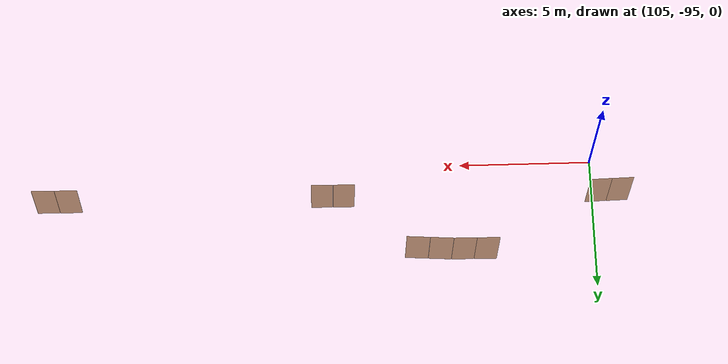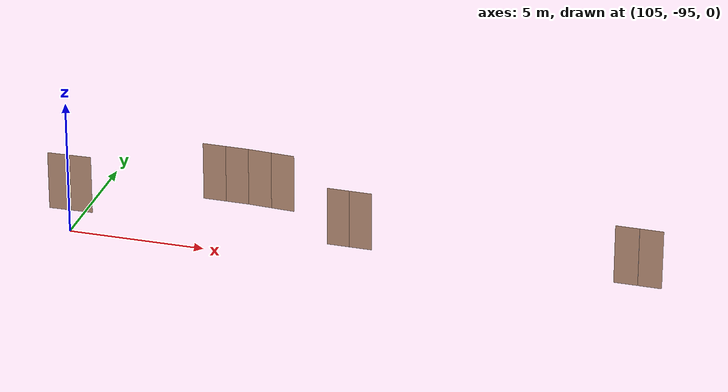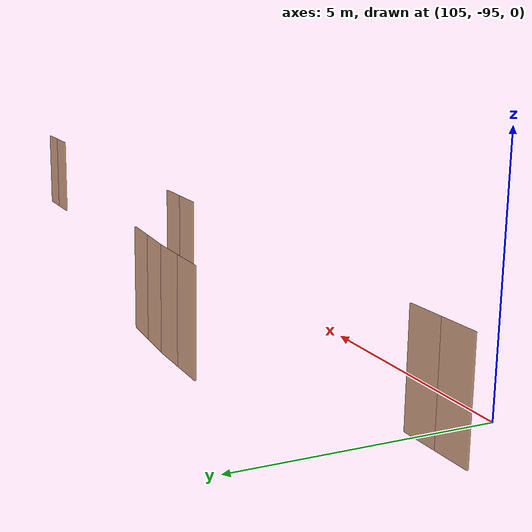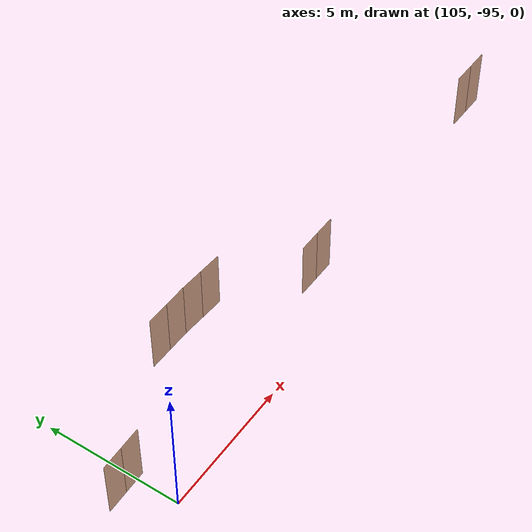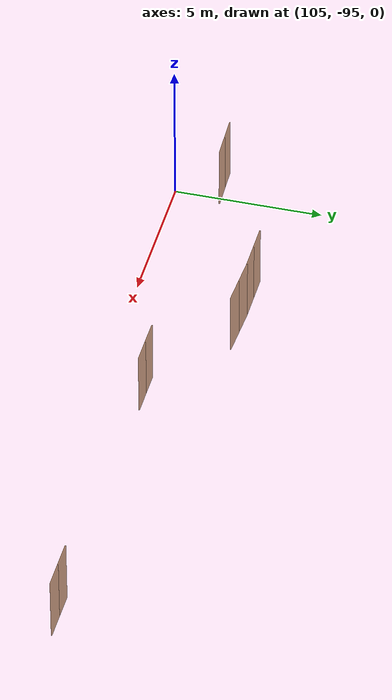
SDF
<sdf version="1.7">
 <world name="sim_world">
  <model name="puerta115">
   <pose>125.34729614311735 -93.43555804257 0.0 0 0 -0.007075006009822052</pose>
   <link name="right">
    <pose>0.4281722281429445 0 1.11 0 0 0</pose>
    <visual name="right_visual">
     <geometry><box><size>0.846344456285889 0.03 2.2</size></box></geometry>
     <material>
      <ambient>0.5 0.25 0 0.6</ambient>
      <diffuse>0.5 0.25 0 0.6</diffuse>
      <pbr><metal><metalness>0.0</metalness></metal></pbr>
     </material>
    </visual>
    <collision name="right_collision">
     <geometry><box><size>0.846344456285889 0.03 2.2</size></box></geometry>
     <surface><contact><collide_bitmask>0x02</collide_bitmask></contact></surface>
    </collision>
    <inertial>
     <mass>50.0</mass>
     <inertia><ixx>20.17041666666667</ixx><iyy>23.151245577857743</iyy><izz>2.988328911191071</izz></inertia>
    </inertial>
   </link>
   <joint name="right_joint" type="revolute">
    <parent>world</parent>
    <child>right</child>
    <axis><xyz>0 0 1</xyz><limit><lower>0</lower><upper>1.57</upper></limit></axis>
    <pose>0.4281722281429445 0 0 0 0 0</pose>
   </joint>
   <link name="left">
    <pose>-0.4281722281429445 0 1.11 0 0 0</pose>
    <visual name="left_visual">
     <geometry><box><size>0.846344456285889 0.03 2.2</size></box></geometry>
     <material>
      <ambient>0.5 0.25 0 0.6</ambient>
      <diffuse>0.5 0.25 0 0.6</diffuse>
      <pbr><metal><metalness>0.0</metalness></metal></pbr>
     </material>
    </visual>
    <collision name="left_collision">
     <geometry><box><size>0.846344456285889 0.03 2.2</size></box></geometry>
     <surface><contact><collide_bitmask>0x02</collide_bitmask></contact></surface>
    </collision>
    <inertial>
     <mass>50.0</mass>
     <inertia><ixx>20.17041666666667</ixx><iyy>23.151245577857743</iyy><izz>2.988328911191071</izz></inertia>
    </inertial>
   </link>
   <joint name="left_joint" type="revolute">
    <parent>world</parent>
    <child>left</child>
    <axis><xyz>0 0 1</xyz><limit><lower>-1.57</lower><upper>0</upper></limit></axis>
    <pose>-0.4281722281429445 0 0 0 0 0</pose>
   </joint>
   <plugin name="register_component" filename="libregister_component.so">
    <component name="Door">
     <v_max_door>0.5</v_max_door>
     <a_max_door>0.3</a_max_door>
     <a_nom_door>0.15</a_nom_door>
     <dx_min_door>0.01</dx_min_door>
     <f_max_door>500.0</f_max_door>
     <ros_interface>true</ros_interface>
     <door name="puerta115" type="DoubleSwingDoor" left_joint_name="left_joint" right_joint_name="right_joint"/>
    </component>
   </plugin>
  </model>
  <model name="puerta116">
   <pose>114.9262029880637 -93.42428233036992 0.0 0 0 -0.00635058426290977</pose>
   <link name="right">
    <pose>0.4107618623763043 0 1.11 0 0 0</pose>
    <visual name="right_visual">
     <geometry><box><size>0.8115237247526086 0.03 2.2</size></box></geometry>
     <material>
      <ambient>0.5 0.25 0 0.6</ambient>
      <diffuse>0.5 0.25 0 0.6</diffuse>
      <pbr><metal><metalness>0.0</metalness></metal></pbr>
     </material>
    </visual>
    <collision name="right_collision">
     <geometry><box><size>0.8115237247526086 0.03 2.2</size></box></geometry>
     <surface><contact><collide_bitmask>0x02</collide_bitmask></contact></surface>
    </collision>
    <inertial>
     <mass>50.0</mass>
     <inertia><ixx>20.17041666666667</ixx><iyy>22.91071148265145</iyy><izz>2.747794815984782</izz></inertia>
    </inertial>
   </link>
   <joint name="right_joint" type="revolute">
    <parent>world</parent>
    <child>right</child>
    <axis><xyz>0 0 1</xyz><limit><lower>0</lower><upper>1.57</upper></limit></axis>
    <pose>0.4107618623763043 0 0 0 0 0</pose>
   </joint>
   <link name="left">
    <pose>-0.4107618623763043 0 1.11 0 0 0</pose>
    <visual name="left_visual">
     <geometry><box><size>0.8115237247526086 0.03 2.2</size></box></geometry>
     <material>
      <ambient>0.5 0.25 0 0.6</ambient>
      <diffuse>0.5 0.25 0 0.6</diffuse>
      <pbr><metal><metalness>0.0</metalness></metal></pbr>
     </material>
    </visual>
    <collision name="left_collision">
     <geometry><box><size>0.8115237247526086 0.03 2.2</size></box></geometry>
     <surface><contact><collide_bitmask>0x02</collide_bitmask></contact></surface>
    </collision>
    <inertial>
     <mass>50.0</mass>
     <inertia><ixx>20.17041666666667</ixx><iyy>22.91071148265145</iyy><izz>2.747794815984782</izz></inertia>
    </inertial>
   </link>
   <joint name="left_joint" type="revolute">
    <parent>world</parent>
    <child>left</child>
    <axis><xyz>0 0 1</xyz><limit><lower>-1.57</lower><upper>0</upper></limit></axis>
    <pose>-0.4107618623763043 0 0 0 0 0</pose>
   </joint>
   <plugin name="register_component" filename="libregister_component.so">
    <component name="Door">
     <v_max_door>0.5</v_max_door>
     <a_max_door>0.3</a_max_door>
     <a_nom_door>0.15</a_nom_door>
     <dx_min_door>0.01</dx_min_door>
     <f_max_door>500.0</f_max_door>
     <ros_interface>true</ros_interface>
     <door name="puerta116" type="DoubleSwingDoor" left_joint_name="left_joint" right_joint_name="right_joint"/>
    </component>
   </plugin>
  </model>
  <model name="puerta10">
   <pose>111.36158432171118 -91.25278211369113 0.0 0 0 -0.06074635100746363</pose>
   <link name="right">
    <pose>0.43938515885075785 0 1.11 0 0 0</pose>
    <visual name="right_visual">
     <geometry><box><size>0.8687703177015157 0.03 2.2</size></box></geometry>
     <material>
      <ambient>0.5 0.25 0 0.6</ambient>
      <diffuse>0.5 0.25 0 0.6</diffuse>
      <pbr><metal><metalness>0.0</metalness></metal></pbr>
     </material>
    </visual>
    <collision name="right_collision">
     <geometry><box><size>0.8687703177015157 0.03 2.2</size></box></geometry>
     <surface><contact><collide_bitmask>0x02</collide_bitmask></contact></surface>
    </collision>
    <inertial>
     <mass>50.0</mass>
     <inertia><ixx>20.17041666666667</ixx><iyy>23.31150777049664</iyy><izz>3.148591103829969</izz></inertia>
    </inertial>
   </link>
   <joint name="right_joint" type="revolute">
    <parent>world</parent>
    <child>right</child>
    <axis><xyz>0 0 -1</xyz><limit><lower>0</lower><upper>1.57</upper></limit></axis>
    <pose>0.43938515885075785 0 0 0 0 0</pose>
   </joint>
   <link name="left">
    <pose>-0.43938515885075785 0 1.11 0 0 0</pose>
    <visual name="left_visual">
     <geometry><box><size>0.8687703177015157 0.03 2.2</size></box></geometry>
     <material>
      <ambient>0.5 0.25 0 0.6</ambient>
      <diffuse>0.5 0.25 0 0.6</diffuse>
      <pbr><metal><metalness>0.0</metalness></metal></pbr>
     </material>
    </visual>
    <collision name="left_collision">
     <geometry><box><size>0.8687703177015157 0.03 2.2</size></box></geometry>
     <surface><contact><collide_bitmask>0x02</collide_bitmask></contact></surface>
    </collision>
    <inertial>
     <mass>50.0</mass>
     <inertia><ixx>20.17041666666667</ixx><iyy>23.31150777049664</iyy><izz>3.148591103829969</izz></inertia>
    </inertial>
   </link>
   <joint name="left_joint" type="revolute">
    <parent>world</parent>
    <child>left</child>
    <axis><xyz>0 0 -1</xyz><limit><lower>-1.57</lower><upper>0</upper></limit></axis>
    <pose>-0.43938515885075785 0 0 0 0 0</pose>
   </joint>
   <plugin name="register_component" filename="libregister_component.so">
    <component name="Door">
     <v_max_door>0.5</v_max_door>
     <a_max_door>0.3</a_max_door>
     <a_nom_door>0.15</a_nom_door>
     <dx_min_door>0.01</dx_min_door>
     <f_max_door>500.0</f_max_door>
     <ros_interface>true</ros_interface>
     <door name="puerta10" type="DoubleSwingDoor" left_joint_name="left_joint" right_joint_name="right_joint"/>
    </component>
   </plugin>
  </model>
  <model name="puerta9">
   <pose>109.62508256934768 -91.1935004775348 0.0 0 0 -0.006903195116290304</pose>
   <link name="right">
    <pose>0.42968639798191266 0 1.11 0 0 0</pose>
    <visual name="right_visual">
     <geometry><box><size>0.8493727959638253 0.03 2.2</size></box></geometry>
     <material>
      <ambient>0.5 0.25 0 0.6</ambient>
      <diffuse>0.5 0.25 0 0.6</diffuse>
      <pbr><metal><metalness>0.0</metalness></metal></pbr>
     </material>
    </visual>
    <collision name="right_collision">
     <geometry><box><size>0.8493727959638253 0.03 2.2</size></box></geometry>
     <surface><contact><collide_bitmask>0x02</collide_bitmask></contact></surface>
    </collision>
    <inertial>
     <mass>50.0</mass>
     <inertia><ixx>20.17041666666667</ixx><iyy>23.172642277180863</iyy><izz>3.009725610514192</izz></inertia>
    </inertial>
   </link>
   <joint name="right_joint" type="revolute">
    <parent>world</parent>
    <child>right</child>
    <axis><xyz>0 0 -1</xyz><limit><lower>0</lower><upper>1.57</upper></limit></axis>
    <pose>0.42968639798191266 0 0 0 0 0</pose>
   </joint>
   <link name="left">
    <pose>-0.42968639798191266 0 1.11 0 0 0</pose>
    <visual name="left_visual">
     <geometry><box><size>0.8493727959638253 0.03 2.2</size></box></geometry>
     <material>
      <ambient>0.5 0.25 0 0.6</ambient>
      <diffuse>0.5 0.25 0 0.6</diffuse>
      <pbr><metal><metalness>0.0</metalness></metal></pbr>
     </material>
    </visual>
    <collision name="left_collision">
     <geometry><box><size>0.8493727959638253 0.03 2.2</size></box></geometry>
     <surface><contact><collide_bitmask>0x02</collide_bitmask></contact></surface>
    </collision>
    <inertial>
     <mass>50.0</mass>
     <inertia><ixx>20.17041666666667</ixx><iyy>23.172642277180863</iyy><izz>3.009725610514192</izz></inertia>
    </inertial>
   </link>
   <joint name="left_joint" type="revolute">
    <parent>world</parent>
    <child>left</child>
    <axis><xyz>0 0 -1</xyz><limit><lower>-1.57</lower><upper>0</upper></limit></axis>
    <pose>-0.42968639798191266 0 0 0 0 0</pose>
   </joint>
   <plugin name="register_component" filename="libregister_component.so">
    <component name="Door">
     <v_max_door>0.5</v_max_door>
     <a_max_door>0.3</a_max_door>
     <a_nom_door>0.15</a_nom_door>
     <dx_min_door>0.01</dx_min_door>
     <f_max_door>500.0</f_max_door>
     <ros_interface>true</ros_interface>
     <door name="puerta9" type="DoubleSwingDoor" left_joint_name="left_joint" right_joint_name="right_joint"/>
    </component>
   </plugin>
  </model>
  <model name="puerta8">
   <pose>104.45769293879556 -93.44235292137711 0.0 0 0 0.028573239722212537</pose>
   <link name="right">
    <pose>0.4075645762170923 0 1.11 0 0 0</pose>
    <visual name="right_visual">
     <geometry><box><size>0.8051291524341846 0.03 2.2</size></box></geometry>
     <material>
      <ambient>0.5 0.25 0 0.6</ambient>
      <diffuse>0.5 0.25 0 0.6</diffuse>
      <pbr><metal><metalness>0.0</metalness></metal></pbr>
     </material>
    </visual>
    <collision name="right_collision">
     <geometry><box><size>0.8051291524341846 0.03 2.2</size></box></geometry>
     <surface><contact><collide_bitmask>0x02</collide_bitmask></contact></surface>
    </collision>
    <inertial>
     <mass>50.0</mass>
     <inertia><ixx>20.17041666666667</ixx><iyy>22.867637300414124</iyy><izz>2.7047206337474523</izz></inertia>
    </inertial>
   </link>
   <joint name="right_joint" type="revolute">
    <parent>world</parent>
    <child>right</child>
    <axis><xyz>0 0 1</xyz><limit><lower>0</lower><upper>1.57</upper></limit></axis>
    <pose>0.4075645762170923 0 0 0 0 0</pose>
   </joint>
   <link name="left">
    <pose>-0.4075645762170923 0 1.11 0 0 0</pose>
    <visual name="left_visual">
     <geometry><box><size>0.8051291524341846 0.03 2.2</size></box></geometry>
     <material>
      <ambient>0.5 0.25 0 0.6</ambient>
      <diffuse>0.5 0.25 0 0.6</diffuse>
      <pbr><metal><metalness>0.0</metalness></metal></pbr>
     </material>
    </visual>
    <collision name="left_collision">
     <geometry><box><size>0.8051291524341846 0.03 2.2</size></box></geometry>
     <surface><contact><collide_bitmask>0x02</collide_bitmask></contact></surface>
    </collision>
    <inertial>
     <mass>50.0</mass>
     <inertia><ixx>20.17041666666667</ixx><iyy>22.867637300414124</iyy><izz>2.7047206337474523</izz></inertia>
    </inertial>
   </link>
   <joint name="left_joint" type="revolute">
    <parent>world</parent>
    <child>left</child>
    <axis><xyz>0 0 1</xyz><limit><lower>-1.57</lower><upper>0</upper></limit></axis>
    <pose>-0.4075645762170923 0 0 0 0 0</pose>
   </joint>
   <plugin name="register_component" filename="libregister_component.so">
    <component name="Door">
     <v_max_door>0.5</v_max_door>
     <a_max_door>0.3</a_max_door>
     <a_nom_door>0.15</a_nom_door>
     <dx_min_door>0.01</dx_min_door>
     <f_max_door>500.0</f_max_door>
     <ros_interface>true</ros_interface>
     <door name="puerta8" type="DoubleSwingDoor" left_joint_name="left_joint" right_joint_name="right_joint"/>
    </component>
   </plugin>
  </model>
 </world>
</sdf>
